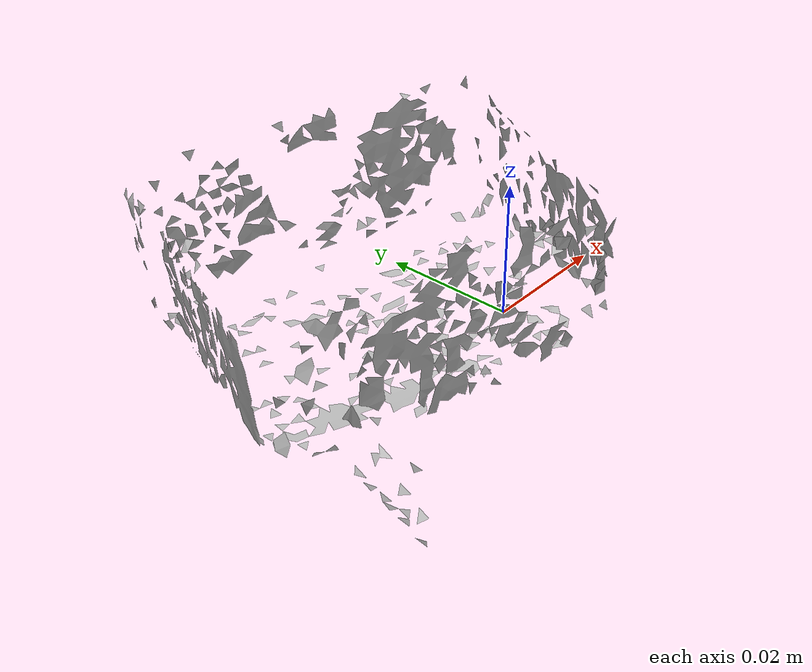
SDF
<?xml version="1.0" ?>
<sdf version="1.4">
  <model name='ycb_038_padlock'>
    <link name='body'>
      <inertial>
        <mass>0.208</mass>
        <pose>-0.0170760669983 0.00951738898351 0.0136263415536 0 0 0</pose>
        <inertia>
          <ixx>3.91697613202e-05</ixx>
          <ixy>2.65760748168e-06</ixy>
          <ixz>-3.33389917025e-06</ixz>
          <iyy>5.14630958356e-05</iyy>
          <iyz>2.54560188935e-07</iyz>
          <izz>7.01200706644e-05</izz>
        </inertia>
      </inertial>
      <visual name='ycb_038_padlock_visual'>
        <pose>0 0 0 0 0 0</pose>
        <geometry>
          <mesh>
            <uri>model://ycb_038_padlock/meshes/textured.dae</uri>
          </mesh>
        </geometry>
      </visual>
      <collision name='ycb_038_padlock_collision'>
        <pose>0 0 0 0 0 0</pose>
        <geometry>
          <mesh>
            <uri>model://ycb_038_padlock/meshes/nontextured.stl</uri>
          </mesh>
        </geometry>
        <max_contacts>10</max_contacts>
      </collision>
    </link>
  </model>
</sdf>
